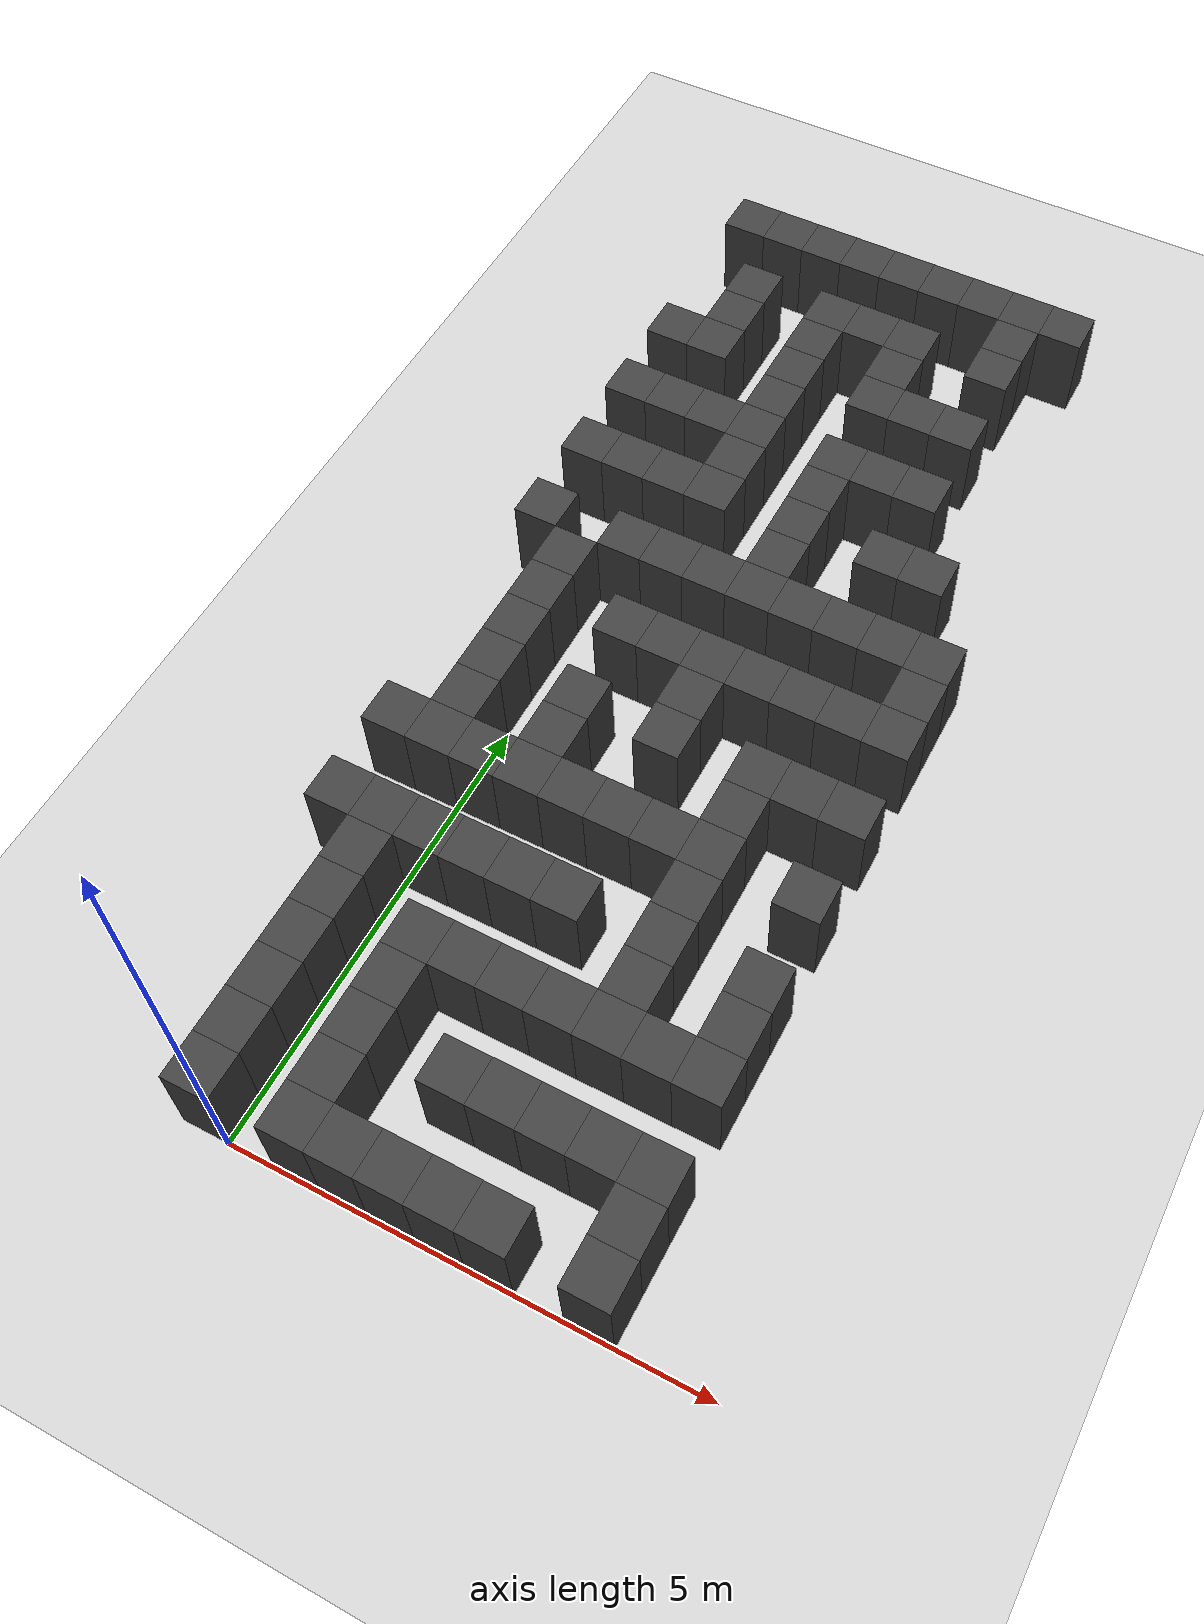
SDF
<sdf version="1.7">
 <world name="map_18914">
  <model name="ground_plane">
   <static>true</static>
   <link name="link">
    <collision name="collision">
     <geometry><plane><normal>0 0 1</normal><size>200 200</size></plane></geometry>
    </collision>
    <visual name="visual">
     <geometry><plane><normal>0 0 1</normal><size>200 200</size></plane></geometry>
     <material><ambient>0.8 0.8 0.8 1</ambient><diffuse>0.8 0.8 0.8 1</diffuse></material>
    </visual>
   </link>
  </model>
  <model name="maze_environment">
   <static>true</static>
   <link name="wall_23">
    <pose>-0.750 12.250 0.500 0 0 0</pose>
    <collision name="col"><geometry><box><size>0.5 0.5 1.0</size></box></geometry></collision>
    <visual name="vis">
     <geometry><box><size>0.5 0.5 1.0</size></box></geometry>
     <material><ambient>0.15 0.15 0.15 1</ambient><diffuse>0.25 0.25 0.25 1</diffuse></material>
    </visual>
   </link>
   <link name="wall_24">
    <pose>-0.250 12.250 0.500 0 0 0</pose>
    <collision name="col"><geometry><box><size>0.5 0.5 1.0</size></box></geometry></collision>
    <visual name="vis">
     <geometry><box><size>0.5 0.5 1.0</size></box></geometry>
     <material><ambient>0.15 0.15 0.15 1</ambient><diffuse>0.25 0.25 0.25 1</diffuse></material>
    </visual>
   </link>
   <link name="wall_25">
    <pose>0.250 12.250 0.500 0 0 0</pose>
    <collision name="col"><geometry><box><size>0.5 0.5 1.0</size></box></geometry></collision>
    <visual name="vis">
     <geometry><box><size>0.5 0.5 1.0</size></box></geometry>
     <material><ambient>0.15 0.15 0.15 1</ambient><diffuse>0.25 0.25 0.25 1</diffuse></material>
    </visual>
   </link>
   <link name="wall_26">
    <pose>0.750 12.250 0.500 0 0 0</pose>
    <collision name="col"><geometry><box><size>0.5 0.5 1.0</size></box></geometry></collision>
    <visual name="vis">
     <geometry><box><size>0.5 0.5 1.0</size></box></geometry>
     <material><ambient>0.15 0.15 0.15 1</ambient><diffuse>0.25 0.25 0.25 1</diffuse></material>
    </visual>
   </link>
   <link name="wall_27">
    <pose>1.250 12.250 0.500 0 0 0</pose>
    <collision name="col"><geometry><box><size>0.5 0.5 1.0</size></box></geometry></collision>
    <visual name="vis">
     <geometry><box><size>0.5 0.5 1.0</size></box></geometry>
     <material><ambient>0.15 0.15 0.15 1</ambient><diffuse>0.25 0.25 0.25 1</diffuse></material>
    </visual>
   </link>
   <link name="wall_28">
    <pose>1.750 12.250 0.500 0 0 0</pose>
    <collision name="col"><geometry><box><size>0.5 0.5 1.0</size></box></geometry></collision>
    <visual name="vis">
     <geometry><box><size>0.5 0.5 1.0</size></box></geometry>
     <material><ambient>0.15 0.15 0.15 1</ambient><diffuse>0.25 0.25 0.25 1</diffuse></material>
    </visual>
   </link>
   <link name="wall_29">
    <pose>2.250 12.250 0.500 0 0 0</pose>
    <collision name="col"><geometry><box><size>0.5 0.5 1.0</size></box></geometry></collision>
    <visual name="vis">
     <geometry><box><size>0.5 0.5 1.0</size></box></geometry>
     <material><ambient>0.15 0.15 0.15 1</ambient><diffuse>0.25 0.25 0.25 1</diffuse></material>
    </visual>
   </link>
   <link name="wall_30">
    <pose>2.750 12.250 0.500 0 0 0</pose>
    <collision name="col"><geometry><box><size>0.5 0.5 1.0</size></box></geometry></collision>
    <visual name="vis">
     <geometry><box><size>0.5 0.5 1.0</size></box></geometry>
     <material><ambient>0.15 0.15 0.15 1</ambient><diffuse>0.25 0.25 0.25 1</diffuse></material>
    </visual>
   </link>
   <link name="wall_31">
    <pose>3.250 12.250 0.500 0 0 0</pose>
    <collision name="col"><geometry><box><size>0.5 0.5 1.0</size></box></geometry></collision>
    <visual name="vis">
     <geometry><box><size>0.5 0.5 1.0</size></box></geometry>
     <material><ambient>0.15 0.15 0.15 1</ambient><diffuse>0.25 0.25 0.25 1</diffuse></material>
    </visual>
   </link>
   <link name="wall_53">
    <pose>2.750 11.750 0.500 0 0 0</pose>
    <collision name="col"><geometry><box><size>0.5 0.5 1.0</size></box></geometry></collision>
    <visual name="vis">
     <geometry><box><size>0.5 0.5 1.0</size></box></geometry>
     <material><ambient>0.15 0.15 0.15 1</ambient><diffuse>0.25 0.25 0.25 1</diffuse></material>
    </visual>
   </link>
   <link name="wall_76">
    <pose>-0.250 11.250 0.500 0 0 0</pose>
    <collision name="col"><geometry><box><size>0.5 0.5 1.0</size></box></geometry></collision>
    <visual name="vis">
     <geometry><box><size>0.5 0.5 1.0</size></box></geometry>
     <material><ambient>0.15 0.15 0.15 1</ambient><diffuse>0.25 0.25 0.25 1</diffuse></material>
    </visual>
   </link>
   <link name="wall_77">
    <pose>0.750 11.250 0.500 0 0 0</pose>
    <collision name="col"><geometry><box><size>0.5 0.5 1.0</size></box></geometry></collision>
    <visual name="vis">
     <geometry><box><size>0.5 0.5 1.0</size></box></geometry>
     <material><ambient>0.15 0.15 0.15 1</ambient><diffuse>0.25 0.25 0.25 1</diffuse></material>
    </visual>
   </link>
   <link name="wall_78">
    <pose>1.250 11.250 0.500 0 0 0</pose>
    <collision name="col"><geometry><box><size>0.5 0.5 1.0</size></box></geometry></collision>
    <visual name="vis">
     <geometry><box><size>0.5 0.5 1.0</size></box></geometry>
     <material><ambient>0.15 0.15 0.15 1</ambient><diffuse>0.25 0.25 0.25 1</diffuse></material>
    </visual>
   </link>
   <link name="wall_79">
    <pose>1.750 11.250 0.500 0 0 0</pose>
    <collision name="col"><geometry><box><size>0.5 0.5 1.0</size></box></geometry></collision>
    <visual name="vis">
     <geometry><box><size>0.5 0.5 1.0</size></box></geometry>
     <material><ambient>0.15 0.15 0.15 1</ambient><diffuse>0.25 0.25 0.25 1</diffuse></material>
    </visual>
   </link>
   <link name="wall_80">
    <pose>2.750 11.250 0.500 0 0 0</pose>
    <collision name="col"><geometry><box><size>0.5 0.5 1.0</size></box></geometry></collision>
    <visual name="vis">
     <geometry><box><size>0.5 0.5 1.0</size></box></geometry>
     <material><ambient>0.15 0.15 0.15 1</ambient><diffuse>0.25 0.25 0.25 1</diffuse></material>
    </visual>
   </link>
   <link name="wall_99">
    <pose>-0.250 10.750 0.500 0 0 0</pose>
    <collision name="col"><geometry><box><size>0.5 0.5 1.0</size></box></geometry></collision>
    <visual name="vis">
     <geometry><box><size>0.5 0.5 1.0</size></box></geometry>
     <material><ambient>0.15 0.15 0.15 1</ambient><diffuse>0.25 0.25 0.25 1</diffuse></material>
    </visual>
   </link>
   <link name="wall_100">
    <pose>0.750 10.750 0.500 0 0 0</pose>
    <collision name="col"><geometry><box><size>0.5 0.5 1.0</size></box></geometry></collision>
    <visual name="vis">
     <geometry><box><size>0.5 0.5 1.0</size></box></geometry>
     <material><ambient>0.15 0.15 0.15 1</ambient><diffuse>0.25 0.25 0.25 1</diffuse></material>
    </visual>
   </link>
   <link name="wall_101">
    <pose>1.750 10.750 0.500 0 0 0</pose>
    <collision name="col"><geometry><box><size>0.5 0.5 1.0</size></box></geometry></collision>
    <visual name="vis">
     <geometry><box><size>0.5 0.5 1.0</size></box></geometry>
     <material><ambient>0.15 0.15 0.15 1</ambient><diffuse>0.25 0.25 0.25 1</diffuse></material>
    </visual>
   </link>
   <link name="wall_129">
    <pose>-0.750 10.250 0.500 0 0 0</pose>
    <collision name="col"><geometry><box><size>0.5 0.5 1.0</size></box></geometry></collision>
    <visual name="vis">
     <geometry><box><size>0.5 0.5 1.0</size></box></geometry>
     <material><ambient>0.15 0.15 0.15 1</ambient><diffuse>0.25 0.25 0.25 1</diffuse></material>
    </visual>
   </link>
   <link name="wall_130">
    <pose>-0.250 10.250 0.500 0 0 0</pose>
    <collision name="col"><geometry><box><size>0.5 0.5 1.0</size></box></geometry></collision>
    <visual name="vis">
     <geometry><box><size>0.5 0.5 1.0</size></box></geometry>
     <material><ambient>0.15 0.15 0.15 1</ambient><diffuse>0.25 0.25 0.25 1</diffuse></material>
    </visual>
   </link>
   <link name="wall_131">
    <pose>0.750 10.250 0.500 0 0 0</pose>
    <collision name="col"><geometry><box><size>0.5 0.5 1.0</size></box></geometry></collision>
    <visual name="vis">
     <geometry><box><size>0.5 0.5 1.0</size></box></geometry>
     <material><ambient>0.15 0.15 0.15 1</ambient><diffuse>0.25 0.25 0.25 1</diffuse></material>
    </visual>
   </link>
   <link name="wall_132">
    <pose>1.750 10.250 0.500 0 0 0</pose>
    <collision name="col"><geometry><box><size>0.5 0.5 1.0</size></box></geometry></collision>
    <visual name="vis">
     <geometry><box><size>0.5 0.5 1.0</size></box></geometry>
     <material><ambient>0.15 0.15 0.15 1</ambient><diffuse>0.25 0.25 0.25 1</diffuse></material>
    </visual>
   </link>
   <link name="wall_133">
    <pose>2.250 10.250 0.500 0 0 0</pose>
    <collision name="col"><geometry><box><size>0.5 0.5 1.0</size></box></geometry></collision>
    <visual name="vis">
     <geometry><box><size>0.5 0.5 1.0</size></box></geometry>
     <material><ambient>0.15 0.15 0.15 1</ambient><diffuse>0.25 0.25 0.25 1</diffuse></material>
    </visual>
   </link>
   <link name="wall_134">
    <pose>2.750 10.250 0.500 0 0 0</pose>
    <collision name="col"><geometry><box><size>0.5 0.5 1.0</size></box></geometry></collision>
    <visual name="vis">
     <geometry><box><size>0.5 0.5 1.0</size></box></geometry>
     <material><ambient>0.15 0.15 0.15 1</ambient><diffuse>0.25 0.25 0.25 1</diffuse></material>
    </visual>
   </link>
   <link name="wall_152">
    <pose>0.750 9.750 0.500 0 0 0</pose>
    <collision name="col"><geometry><box><size>0.5 0.5 1.0</size></box></geometry></collision>
    <visual name="vis">
     <geometry><box><size>0.5 0.5 1.0</size></box></geometry>
     <material><ambient>0.15 0.15 0.15 1</ambient><diffuse>0.25 0.25 0.25 1</diffuse></material>
    </visual>
   </link>
   <link name="wall_177">
    <pose>-0.750 9.250 0.500 0 0 0</pose>
    <collision name="col"><geometry><box><size>0.5 0.5 1.0</size></box></geometry></collision>
    <visual name="vis">
     <geometry><box><size>0.5 0.5 1.0</size></box></geometry>
     <material><ambient>0.15 0.15 0.15 1</ambient><diffuse>0.25 0.25 0.25 1</diffuse></material>
    </visual>
   </link>
   <link name="wall_178">
    <pose>-0.250 9.250 0.500 0 0 0</pose>
    <collision name="col"><geometry><box><size>0.5 0.5 1.0</size></box></geometry></collision>
    <visual name="vis">
     <geometry><box><size>0.5 0.5 1.0</size></box></geometry>
     <material><ambient>0.15 0.15 0.15 1</ambient><diffuse>0.25 0.25 0.25 1</diffuse></material>
    </visual>
   </link>
   <link name="wall_179">
    <pose>0.250 9.250 0.500 0 0 0</pose>
    <collision name="col"><geometry><box><size>0.5 0.5 1.0</size></box></geometry></collision>
    <visual name="vis">
     <geometry><box><size>0.5 0.5 1.0</size></box></geometry>
     <material><ambient>0.15 0.15 0.15 1</ambient><diffuse>0.25 0.25 0.25 1</diffuse></material>
    </visual>
   </link>
   <link name="wall_180">
    <pose>0.750 9.250 0.500 0 0 0</pose>
    <collision name="col"><geometry><box><size>0.5 0.5 1.0</size></box></geometry></collision>
    <visual name="vis">
     <geometry><box><size>0.5 0.5 1.0</size></box></geometry>
     <material><ambient>0.15 0.15 0.15 1</ambient><diffuse>0.25 0.25 0.25 1</diffuse></material>
    </visual>
   </link>
   <link name="wall_181">
    <pose>1.750 9.250 0.500 0 0 0</pose>
    <collision name="col"><geometry><box><size>0.5 0.5 1.0</size></box></geometry></collision>
    <visual name="vis">
     <geometry><box><size>0.5 0.5 1.0</size></box></geometry>
     <material><ambient>0.15 0.15 0.15 1</ambient><diffuse>0.25 0.25 0.25 1</diffuse></material>
    </visual>
   </link>
   <link name="wall_182">
    <pose>2.250 9.250 0.500 0 0 0</pose>
    <collision name="col"><geometry><box><size>0.5 0.5 1.0</size></box></geometry></collision>
    <visual name="vis">
     <geometry><box><size>0.5 0.5 1.0</size></box></geometry>
     <material><ambient>0.15 0.15 0.15 1</ambient><diffuse>0.25 0.25 0.25 1</diffuse></material>
    </visual>
   </link>
   <link name="wall_183">
    <pose>2.750 9.250 0.500 0 0 0</pose>
    <collision name="col"><geometry><box><size>0.5 0.5 1.0</size></box></geometry></collision>
    <visual name="vis">
     <geometry><box><size>0.5 0.5 1.0</size></box></geometry>
     <material><ambient>0.15 0.15 0.15 1</ambient><diffuse>0.25 0.25 0.25 1</diffuse></material>
    </visual>
   </link>
   <link name="wall_202">
    <pose>0.750 8.750 0.500 0 0 0</pose>
    <collision name="col"><geometry><box><size>0.5 0.5 1.0</size></box></geometry></collision>
    <visual name="vis">
     <geometry><box><size>0.5 0.5 1.0</size></box></geometry>
     <material><ambient>0.15 0.15 0.15 1</ambient><diffuse>0.25 0.25 0.25 1</diffuse></material>
    </visual>
   </link>
   <link name="wall_203">
    <pose>1.750 8.750 0.500 0 0 0</pose>
    <collision name="col"><geometry><box><size>0.5 0.5 1.0</size></box></geometry></collision>
    <visual name="vis">
     <geometry><box><size>0.5 0.5 1.0</size></box></geometry>
     <material><ambient>0.15 0.15 0.15 1</ambient><diffuse>0.25 0.25 0.25 1</diffuse></material>
    </visual>
   </link>
   <link name="wall_227">
    <pose>-0.750 8.250 0.500 0 0 0</pose>
    <collision name="col"><geometry><box><size>0.5 0.5 1.0</size></box></geometry></collision>
    <visual name="vis">
     <geometry><box><size>0.5 0.5 1.0</size></box></geometry>
     <material><ambient>0.15 0.15 0.15 1</ambient><diffuse>0.25 0.25 0.25 1</diffuse></material>
    </visual>
   </link>
   <link name="wall_228">
    <pose>-0.250 8.250 0.500 0 0 0</pose>
    <collision name="col"><geometry><box><size>0.5 0.5 1.0</size></box></geometry></collision>
    <visual name="vis">
     <geometry><box><size>0.5 0.5 1.0</size></box></geometry>
     <material><ambient>0.15 0.15 0.15 1</ambient><diffuse>0.25 0.25 0.25 1</diffuse></material>
    </visual>
   </link>
   <link name="wall_229">
    <pose>0.250 8.250 0.500 0 0 0</pose>
    <collision name="col"><geometry><box><size>0.5 0.5 1.0</size></box></geometry></collision>
    <visual name="vis">
     <geometry><box><size>0.5 0.5 1.0</size></box></geometry>
     <material><ambient>0.15 0.15 0.15 1</ambient><diffuse>0.25 0.25 0.25 1</diffuse></material>
    </visual>
   </link>
   <link name="wall_230">
    <pose>0.750 8.250 0.500 0 0 0</pose>
    <collision name="col"><geometry><box><size>0.5 0.5 1.0</size></box></geometry></collision>
    <visual name="vis">
     <geometry><box><size>0.5 0.5 1.0</size></box></geometry>
     <material><ambient>0.15 0.15 0.15 1</ambient><diffuse>0.25 0.25 0.25 1</diffuse></material>
    </visual>
   </link>
   <link name="wall_231">
    <pose>1.750 8.250 0.500 0 0 0</pose>
    <collision name="col"><geometry><box><size>0.5 0.5 1.0</size></box></geometry></collision>
    <visual name="vis">
     <geometry><box><size>0.5 0.5 1.0</size></box></geometry>
     <material><ambient>0.15 0.15 0.15 1</ambient><diffuse>0.25 0.25 0.25 1</diffuse></material>
    </visual>
   </link>
   <link name="wall_232">
    <pose>2.750 8.250 0.500 0 0 0</pose>
    <collision name="col"><geometry><box><size>0.5 0.5 1.0</size></box></geometry></collision>
    <visual name="vis">
     <geometry><box><size>0.5 0.5 1.0</size></box></geometry>
     <material><ambient>0.15 0.15 0.15 1</ambient><diffuse>0.25 0.25 0.25 1</diffuse></material>
    </visual>
   </link>
   <link name="wall_233">
    <pose>3.250 8.250 0.500 0 0 0</pose>
    <collision name="col"><geometry><box><size>0.5 0.5 1.0</size></box></geometry></collision>
    <visual name="vis">
     <geometry><box><size>0.5 0.5 1.0</size></box></geometry>
     <material><ambient>0.15 0.15 0.15 1</ambient><diffuse>0.25 0.25 0.25 1</diffuse></material>
    </visual>
   </link>
   <link name="wall_255">
    <pose>1.750 7.750 0.500 0 0 0</pose>
    <collision name="col"><geometry><box><size>0.5 0.5 1.0</size></box></geometry></collision>
    <visual name="vis">
     <geometry><box><size>0.5 0.5 1.0</size></box></geometry>
     <material><ambient>0.15 0.15 0.15 1</ambient><diffuse>0.25 0.25 0.25 1</diffuse></material>
    </visual>
   </link>
   <link name="wall_277">
    <pose>-0.750 7.250 0.500 0 0 0</pose>
    <collision name="col"><geometry><box><size>0.5 0.5 1.0</size></box></geometry></collision>
    <visual name="vis">
     <geometry><box><size>0.5 0.5 1.0</size></box></geometry>
     <material><ambient>0.15 0.15 0.15 1</ambient><diffuse>0.25 0.25 0.25 1</diffuse></material>
    </visual>
   </link>
   <link name="wall_278">
    <pose>0.250 7.250 0.500 0 0 0</pose>
    <collision name="col"><geometry><box><size>0.5 0.5 1.0</size></box></geometry></collision>
    <visual name="vis">
     <geometry><box><size>0.5 0.5 1.0</size></box></geometry>
     <material><ambient>0.15 0.15 0.15 1</ambient><diffuse>0.25 0.25 0.25 1</diffuse></material>
    </visual>
   </link>
   <link name="wall_279">
    <pose>0.750 7.250 0.500 0 0 0</pose>
    <collision name="col"><geometry><box><size>0.5 0.5 1.0</size></box></geometry></collision>
    <visual name="vis">
     <geometry><box><size>0.5 0.5 1.0</size></box></geometry>
     <material><ambient>0.15 0.15 0.15 1</ambient><diffuse>0.25 0.25 0.25 1</diffuse></material>
    </visual>
   </link>
   <link name="wall_280">
    <pose>1.250 7.250 0.500 0 0 0</pose>
    <collision name="col"><geometry><box><size>0.5 0.5 1.0</size></box></geometry></collision>
    <visual name="vis">
     <geometry><box><size>0.5 0.5 1.0</size></box></geometry>
     <material><ambient>0.15 0.15 0.15 1</ambient><diffuse>0.25 0.25 0.25 1</diffuse></material>
    </visual>
   </link>
   <link name="wall_281">
    <pose>1.750 7.250 0.500 0 0 0</pose>
    <collision name="col"><geometry><box><size>0.5 0.5 1.0</size></box></geometry></collision>
    <visual name="vis">
     <geometry><box><size>0.5 0.5 1.0</size></box></geometry>
     <material><ambient>0.15 0.15 0.15 1</ambient><diffuse>0.25 0.25 0.25 1</diffuse></material>
    </visual>
   </link>
   <link name="wall_282">
    <pose>2.250 7.250 0.500 0 0 0</pose>
    <collision name="col"><geometry><box><size>0.5 0.5 1.0</size></box></geometry></collision>
    <visual name="vis">
     <geometry><box><size>0.5 0.5 1.0</size></box></geometry>
     <material><ambient>0.15 0.15 0.15 1</ambient><diffuse>0.25 0.25 0.25 1</diffuse></material>
    </visual>
   </link>
   <link name="wall_283">
    <pose>2.750 7.250 0.500 0 0 0</pose>
    <collision name="col"><geometry><box><size>0.5 0.5 1.0</size></box></geometry></collision>
    <visual name="vis">
     <geometry><box><size>0.5 0.5 1.0</size></box></geometry>
     <material><ambient>0.15 0.15 0.15 1</ambient><diffuse>0.25 0.25 0.25 1</diffuse></material>
    </visual>
   </link>
   <link name="wall_284">
    <pose>3.250 7.250 0.500 0 0 0</pose>
    <collision name="col"><geometry><box><size>0.5 0.5 1.0</size></box></geometry></collision>
    <visual name="vis">
     <geometry><box><size>0.5 0.5 1.0</size></box></geometry>
     <material><ambient>0.15 0.15 0.15 1</ambient><diffuse>0.25 0.25 0.25 1</diffuse></material>
    </visual>
   </link>
   <link name="wall_285">
    <pose>3.750 7.250 0.500 0 0 0</pose>
    <collision name="col"><geometry><box><size>0.5 0.5 1.0</size></box></geometry></collision>
    <visual name="vis">
     <geometry><box><size>0.5 0.5 1.0</size></box></geometry>
     <material><ambient>0.15 0.15 0.15 1</ambient><diffuse>0.25 0.25 0.25 1</diffuse></material>
    </visual>
   </link>
   <link name="wall_305">
    <pose>-0.250 6.750 0.500 0 0 0</pose>
    <collision name="col"><geometry><box><size>0.5 0.5 1.0</size></box></geometry></collision>
    <visual name="vis">
     <geometry><box><size>0.5 0.5 1.0</size></box></geometry>
     <material><ambient>0.15 0.15 0.15 1</ambient><diffuse>0.25 0.25 0.25 1</diffuse></material>
    </visual>
   </link>
   <link name="wall_306">
    <pose>3.750 6.750 0.500 0 0 0</pose>
    <collision name="col"><geometry><box><size>0.5 0.5 1.0</size></box></geometry></collision>
    <visual name="vis">
     <geometry><box><size>0.5 0.5 1.0</size></box></geometry>
     <material><ambient>0.15 0.15 0.15 1</ambient><diffuse>0.25 0.25 0.25 1</diffuse></material>
    </visual>
   </link>
   <link name="wall_330">
    <pose>-0.250 6.250 0.500 0 0 0</pose>
    <collision name="col"><geometry><box><size>0.5 0.5 1.0</size></box></geometry></collision>
    <visual name="vis">
     <geometry><box><size>0.5 0.5 1.0</size></box></geometry>
     <material><ambient>0.15 0.15 0.15 1</ambient><diffuse>0.25 0.25 0.25 1</diffuse></material>
    </visual>
   </link>
   <link name="wall_331">
    <pose>0.750 6.250 0.500 0 0 0</pose>
    <collision name="col"><geometry><box><size>0.5 0.5 1.0</size></box></geometry></collision>
    <visual name="vis">
     <geometry><box><size>0.5 0.5 1.0</size></box></geometry>
     <material><ambient>0.15 0.15 0.15 1</ambient><diffuse>0.25 0.25 0.25 1</diffuse></material>
    </visual>
   </link>
   <link name="wall_332">
    <pose>1.250 6.250 0.500 0 0 0</pose>
    <collision name="col"><geometry><box><size>0.5 0.5 1.0</size></box></geometry></collision>
    <visual name="vis">
     <geometry><box><size>0.5 0.5 1.0</size></box></geometry>
     <material><ambient>0.15 0.15 0.15 1</ambient><diffuse>0.25 0.25 0.25 1</diffuse></material>
    </visual>
   </link>
   <link name="wall_333">
    <pose>1.750 6.250 0.500 0 0 0</pose>
    <collision name="col"><geometry><box><size>0.5 0.5 1.0</size></box></geometry></collision>
    <visual name="vis">
     <geometry><box><size>0.5 0.5 1.0</size></box></geometry>
     <material><ambient>0.15 0.15 0.15 1</ambient><diffuse>0.25 0.25 0.25 1</diffuse></material>
    </visual>
   </link>
   <link name="wall_334">
    <pose>2.250 6.250 0.500 0 0 0</pose>
    <collision name="col"><geometry><box><size>0.5 0.5 1.0</size></box></geometry></collision>
    <visual name="vis">
     <geometry><box><size>0.5 0.5 1.0</size></box></geometry>
     <material><ambient>0.15 0.15 0.15 1</ambient><diffuse>0.25 0.25 0.25 1</diffuse></material>
    </visual>
   </link>
   <link name="wall_335">
    <pose>2.750 6.250 0.500 0 0 0</pose>
    <collision name="col"><geometry><box><size>0.5 0.5 1.0</size></box></geometry></collision>
    <visual name="vis">
     <geometry><box><size>0.5 0.5 1.0</size></box></geometry>
     <material><ambient>0.15 0.15 0.15 1</ambient><diffuse>0.25 0.25 0.25 1</diffuse></material>
    </visual>
   </link>
   <link name="wall_336">
    <pose>3.250 6.250 0.500 0 0 0</pose>
    <collision name="col"><geometry><box><size>0.5 0.5 1.0</size></box></geometry></collision>
    <visual name="vis">
     <geometry><box><size>0.5 0.5 1.0</size></box></geometry>
     <material><ambient>0.15 0.15 0.15 1</ambient><diffuse>0.25 0.25 0.25 1</diffuse></material>
    </visual>
   </link>
   <link name="wall_337">
    <pose>3.750 6.250 0.500 0 0 0</pose>
    <collision name="col"><geometry><box><size>0.5 0.5 1.0</size></box></geometry></collision>
    <visual name="vis">
     <geometry><box><size>0.5 0.5 1.0</size></box></geometry>
     <material><ambient>0.15 0.15 0.15 1</ambient><diffuse>0.25 0.25 0.25 1</diffuse></material>
    </visual>
   </link>
   <link name="wall_355">
    <pose>-0.250 5.750 0.500 0 0 0</pose>
    <collision name="col"><geometry><box><size>0.5 0.5 1.0</size></box></geometry></collision>
    <visual name="vis">
     <geometry><box><size>0.5 0.5 1.0</size></box></geometry>
     <material><ambient>0.15 0.15 0.15 1</ambient><diffuse>0.25 0.25 0.25 1</diffuse></material>
    </visual>
   </link>
   <link name="wall_356">
    <pose>1.750 5.750 0.500 0 0 0</pose>
    <collision name="col"><geometry><box><size>0.5 0.5 1.0</size></box></geometry></collision>
    <visual name="vis">
     <geometry><box><size>0.5 0.5 1.0</size></box></geometry>
     <material><ambient>0.15 0.15 0.15 1</ambient><diffuse>0.25 0.25 0.25 1</diffuse></material>
    </visual>
   </link>
   <link name="wall_380">
    <pose>-0.250 5.250 0.500 0 0 0</pose>
    <collision name="col"><geometry><box><size>0.5 0.5 1.0</size></box></geometry></collision>
    <visual name="vis">
     <geometry><box><size>0.5 0.5 1.0</size></box></geometry>
     <material><ambient>0.15 0.15 0.15 1</ambient><diffuse>0.25 0.25 0.25 1</diffuse></material>
    </visual>
   </link>
   <link name="wall_381">
    <pose>0.750 5.250 0.500 0 0 0</pose>
    <collision name="col"><geometry><box><size>0.5 0.5 1.0</size></box></geometry></collision>
    <visual name="vis">
     <geometry><box><size>0.5 0.5 1.0</size></box></geometry>
     <material><ambient>0.15 0.15 0.15 1</ambient><diffuse>0.25 0.25 0.25 1</diffuse></material>
    </visual>
   </link>
   <link name="wall_382">
    <pose>1.750 5.250 0.500 0 0 0</pose>
    <collision name="col"><geometry><box><size>0.5 0.5 1.0</size></box></geometry></collision>
    <visual name="vis">
     <geometry><box><size>0.5 0.5 1.0</size></box></geometry>
     <material><ambient>0.15 0.15 0.15 1</ambient><diffuse>0.25 0.25 0.25 1</diffuse></material>
    </visual>
   </link>
   <link name="wall_383">
    <pose>2.750 5.250 0.500 0 0 0</pose>
    <collision name="col"><geometry><box><size>0.5 0.5 1.0</size></box></geometry></collision>
    <visual name="vis">
     <geometry><box><size>0.5 0.5 1.0</size></box></geometry>
     <material><ambient>0.15 0.15 0.15 1</ambient><diffuse>0.25 0.25 0.25 1</diffuse></material>
    </visual>
   </link>
   <link name="wall_384">
    <pose>3.250 5.250 0.500 0 0 0</pose>
    <collision name="col"><geometry><box><size>0.5 0.5 1.0</size></box></geometry></collision>
    <visual name="vis">
     <geometry><box><size>0.5 0.5 1.0</size></box></geometry>
     <material><ambient>0.15 0.15 0.15 1</ambient><diffuse>0.25 0.25 0.25 1</diffuse></material>
    </visual>
   </link>
   <link name="wall_385">
    <pose>3.750 5.250 0.500 0 0 0</pose>
    <collision name="col"><geometry><box><size>0.5 0.5 1.0</size></box></geometry></collision>
    <visual name="vis">
     <geometry><box><size>0.5 0.5 1.0</size></box></geometry>
     <material><ambient>0.15 0.15 0.15 1</ambient><diffuse>0.25 0.25 0.25 1</diffuse></material>
    </visual>
   </link>
   <link name="wall_408">
    <pose>-0.250 4.750 0.500 0 0 0</pose>
    <collision name="col"><geometry><box><size>0.5 0.5 1.0</size></box></geometry></collision>
    <visual name="vis">
     <geometry><box><size>0.5 0.5 1.0</size></box></geometry>
     <material><ambient>0.15 0.15 0.15 1</ambient><diffuse>0.25 0.25 0.25 1</diffuse></material>
    </visual>
   </link>
   <link name="wall_409">
    <pose>0.750 4.750 0.500 0 0 0</pose>
    <collision name="col"><geometry><box><size>0.5 0.5 1.0</size></box></geometry></collision>
    <visual name="vis">
     <geometry><box><size>0.5 0.5 1.0</size></box></geometry>
     <material><ambient>0.15 0.15 0.15 1</ambient><diffuse>0.25 0.25 0.25 1</diffuse></material>
    </visual>
   </link>
   <link name="wall_410">
    <pose>2.750 4.750 0.500 0 0 0</pose>
    <collision name="col"><geometry><box><size>0.5 0.5 1.0</size></box></geometry></collision>
    <visual name="vis">
     <geometry><box><size>0.5 0.5 1.0</size></box></geometry>
     <material><ambient>0.15 0.15 0.15 1</ambient><diffuse>0.25 0.25 0.25 1</diffuse></material>
    </visual>
   </link>
   <link name="wall_429">
    <pose>-0.750 4.250 0.500 0 0 0</pose>
    <collision name="col"><geometry><box><size>0.5 0.5 1.0</size></box></geometry></collision>
    <visual name="vis">
     <geometry><box><size>0.5 0.5 1.0</size></box></geometry>
     <material><ambient>0.15 0.15 0.15 1</ambient><diffuse>0.25 0.25 0.25 1</diffuse></material>
    </visual>
   </link>
   <link name="wall_430">
    <pose>-0.250 4.250 0.500 0 0 0</pose>
    <collision name="col"><geometry><box><size>0.5 0.5 1.0</size></box></geometry></collision>
    <visual name="vis">
     <geometry><box><size>0.5 0.5 1.0</size></box></geometry>
     <material><ambient>0.15 0.15 0.15 1</ambient><diffuse>0.25 0.25 0.25 1</diffuse></material>
    </visual>
   </link>
   <link name="wall_431">
    <pose>0.250 4.250 0.500 0 0 0</pose>
    <collision name="col"><geometry><box><size>0.5 0.5 1.0</size></box></geometry></collision>
    <visual name="vis">
     <geometry><box><size>0.5 0.5 1.0</size></box></geometry>
     <material><ambient>0.15 0.15 0.15 1</ambient><diffuse>0.25 0.25 0.25 1</diffuse></material>
    </visual>
   </link>
   <link name="wall_432">
    <pose>0.750 4.250 0.500 0 0 0</pose>
    <collision name="col"><geometry><box><size>0.5 0.5 1.0</size></box></geometry></collision>
    <visual name="vis">
     <geometry><box><size>0.5 0.5 1.0</size></box></geometry>
     <material><ambient>0.15 0.15 0.15 1</ambient><diffuse>0.25 0.25 0.25 1</diffuse></material>
    </visual>
   </link>
   <link name="wall_433">
    <pose>1.250 4.250 0.500 0 0 0</pose>
    <collision name="col"><geometry><box><size>0.5 0.5 1.0</size></box></geometry></collision>
    <visual name="vis">
     <geometry><box><size>0.5 0.5 1.0</size></box></geometry>
     <material><ambient>0.15 0.15 0.15 1</ambient><diffuse>0.25 0.25 0.25 1</diffuse></material>
    </visual>
   </link>
   <link name="wall_434">
    <pose>1.750 4.250 0.500 0 0 0</pose>
    <collision name="col"><geometry><box><size>0.5 0.5 1.0</size></box></geometry></collision>
    <visual name="vis">
     <geometry><box><size>0.5 0.5 1.0</size></box></geometry>
     <material><ambient>0.15 0.15 0.15 1</ambient><diffuse>0.25 0.25 0.25 1</diffuse></material>
    </visual>
   </link>
   <link name="wall_435">
    <pose>2.250 4.250 0.500 0 0 0</pose>
    <collision name="col"><geometry><box><size>0.5 0.5 1.0</size></box></geometry></collision>
    <visual name="vis">
     <geometry><box><size>0.5 0.5 1.0</size></box></geometry>
     <material><ambient>0.15 0.15 0.15 1</ambient><diffuse>0.25 0.25 0.25 1</diffuse></material>
    </visual>
   </link>
   <link name="wall_436">
    <pose>2.750 4.250 0.500 0 0 0</pose>
    <collision name="col"><geometry><box><size>0.5 0.5 1.0</size></box></geometry></collision>
    <visual name="vis">
     <geometry><box><size>0.5 0.5 1.0</size></box></geometry>
     <material><ambient>0.15 0.15 0.15 1</ambient><diffuse>0.25 0.25 0.25 1</diffuse></material>
    </visual>
   </link>
   <link name="wall_437">
    <pose>3.750 4.250 0.500 0 0 0</pose>
    <collision name="col"><geometry><box><size>0.5 0.5 1.0</size></box></geometry></collision>
    <visual name="vis">
     <geometry><box><size>0.5 0.5 1.0</size></box></geometry>
     <material><ambient>0.15 0.15 0.15 1</ambient><diffuse>0.25 0.25 0.25 1</diffuse></material>
    </visual>
   </link>
   <link name="wall_457">
    <pose>2.750 3.750 0.500 0 0 0</pose>
    <collision name="col"><geometry><box><size>0.5 0.5 1.0</size></box></geometry></collision>
    <visual name="vis">
     <geometry><box><size>0.5 0.5 1.0</size></box></geometry>
     <material><ambient>0.15 0.15 0.15 1</ambient><diffuse>0.25 0.25 0.25 1</diffuse></material>
    </visual>
   </link>
   <link name="wall_485">
    <pose>-0.750 3.250 0.500 0 0 0</pose>
    <collision name="col"><geometry><box><size>0.5 0.5 1.0</size></box></geometry></collision>
    <visual name="vis">
     <geometry><box><size>0.5 0.5 1.0</size></box></geometry>
     <material><ambient>0.15 0.15 0.15 1</ambient><diffuse>0.25 0.25 0.25 1</diffuse></material>
    </visual>
   </link>
   <link name="wall_486">
    <pose>-0.250 3.250 0.500 0 0 0</pose>
    <collision name="col"><geometry><box><size>0.5 0.5 1.0</size></box></geometry></collision>
    <visual name="vis">
     <geometry><box><size>0.5 0.5 1.0</size></box></geometry>
     <material><ambient>0.15 0.15 0.15 1</ambient><diffuse>0.25 0.25 0.25 1</diffuse></material>
    </visual>
   </link>
   <link name="wall_487">
    <pose>0.250 3.250 0.500 0 0 0</pose>
    <collision name="col"><geometry><box><size>0.5 0.5 1.0</size></box></geometry></collision>
    <visual name="vis">
     <geometry><box><size>0.5 0.5 1.0</size></box></geometry>
     <material><ambient>0.15 0.15 0.15 1</ambient><diffuse>0.25 0.25 0.25 1</diffuse></material>
    </visual>
   </link>
   <link name="wall_488">
    <pose>0.750 3.250 0.500 0 0 0</pose>
    <collision name="col"><geometry><box><size>0.5 0.5 1.0</size></box></geometry></collision>
    <visual name="vis">
     <geometry><box><size>0.5 0.5 1.0</size></box></geometry>
     <material><ambient>0.15 0.15 0.15 1</ambient><diffuse>0.25 0.25 0.25 1</diffuse></material>
    </visual>
   </link>
   <link name="wall_489">
    <pose>1.250 3.250 0.500 0 0 0</pose>
    <collision name="col"><geometry><box><size>0.5 0.5 1.0</size></box></geometry></collision>
    <visual name="vis">
     <geometry><box><size>0.5 0.5 1.0</size></box></geometry>
     <material><ambient>0.15 0.15 0.15 1</ambient><diffuse>0.25 0.25 0.25 1</diffuse></material>
    </visual>
   </link>
   <link name="wall_490">
    <pose>1.750 3.250 0.500 0 0 0</pose>
    <collision name="col"><geometry><box><size>0.5 0.5 1.0</size></box></geometry></collision>
    <visual name="vis">
     <geometry><box><size>0.5 0.5 1.0</size></box></geometry>
     <material><ambient>0.15 0.15 0.15 1</ambient><diffuse>0.25 0.25 0.25 1</diffuse></material>
    </visual>
   </link>
   <link name="wall_491">
    <pose>2.750 3.250 0.500 0 0 0</pose>
    <collision name="col"><geometry><box><size>0.5 0.5 1.0</size></box></geometry></collision>
    <visual name="vis">
     <geometry><box><size>0.5 0.5 1.0</size></box></geometry>
     <material><ambient>0.15 0.15 0.15 1</ambient><diffuse>0.25 0.25 0.25 1</diffuse></material>
    </visual>
   </link>
   <link name="wall_492">
    <pose>3.750 3.250 0.500 0 0 0</pose>
    <collision name="col"><geometry><box><size>0.5 0.5 1.0</size></box></geometry></collision>
    <visual name="vis">
     <geometry><box><size>0.5 0.5 1.0</size></box></geometry>
     <material><ambient>0.15 0.15 0.15 1</ambient><diffuse>0.25 0.25 0.25 1</diffuse></material>
    </visual>
   </link>
   <link name="wall_507">
    <pose>-0.250 2.750 0.500 0 0 0</pose>
    <collision name="col"><geometry><box><size>0.5 0.5 1.0</size></box></geometry></collision>
    <visual name="vis">
     <geometry><box><size>0.5 0.5 1.0</size></box></geometry>
     <material><ambient>0.15 0.15 0.15 1</ambient><diffuse>0.25 0.25 0.25 1</diffuse></material>
    </visual>
   </link>
   <link name="wall_508">
    <pose>2.750 2.750 0.500 0 0 0</pose>
    <collision name="col"><geometry><box><size>0.5 0.5 1.0</size></box></geometry></collision>
    <visual name="vis">
     <geometry><box><size>0.5 0.5 1.0</size></box></geometry>
     <material><ambient>0.15 0.15 0.15 1</ambient><diffuse>0.25 0.25 0.25 1</diffuse></material>
    </visual>
   </link>
   <link name="wall_509">
    <pose>3.750 2.750 0.500 0 0 0</pose>
    <collision name="col"><geometry><box><size>0.5 0.5 1.0</size></box></geometry></collision>
    <visual name="vis">
     <geometry><box><size>0.5 0.5 1.0</size></box></geometry>
     <material><ambient>0.15 0.15 0.15 1</ambient><diffuse>0.25 0.25 0.25 1</diffuse></material>
    </visual>
   </link>
   <link name="wall_533">
    <pose>-0.250 2.250 0.500 0 0 0</pose>
    <collision name="col"><geometry><box><size>0.5 0.5 1.0</size></box></geometry></collision>
    <visual name="vis">
     <geometry><box><size>0.5 0.5 1.0</size></box></geometry>
     <material><ambient>0.15 0.15 0.15 1</ambient><diffuse>0.25 0.25 0.25 1</diffuse></material>
    </visual>
   </link>
   <link name="wall_534">
    <pose>0.750 2.250 0.500 0 0 0</pose>
    <collision name="col"><geometry><box><size>0.5 0.5 1.0</size></box></geometry></collision>
    <visual name="vis">
     <geometry><box><size>0.5 0.5 1.0</size></box></geometry>
     <material><ambient>0.15 0.15 0.15 1</ambient><diffuse>0.25 0.25 0.25 1</diffuse></material>
    </visual>
   </link>
   <link name="wall_535">
    <pose>1.250 2.250 0.500 0 0 0</pose>
    <collision name="col"><geometry><box><size>0.5 0.5 1.0</size></box></geometry></collision>
    <visual name="vis">
     <geometry><box><size>0.5 0.5 1.0</size></box></geometry>
     <material><ambient>0.15 0.15 0.15 1</ambient><diffuse>0.25 0.25 0.25 1</diffuse></material>
    </visual>
   </link>
   <link name="wall_536">
    <pose>1.750 2.250 0.500 0 0 0</pose>
    <collision name="col"><geometry><box><size>0.5 0.5 1.0</size></box></geometry></collision>
    <visual name="vis">
     <geometry><box><size>0.5 0.5 1.0</size></box></geometry>
     <material><ambient>0.15 0.15 0.15 1</ambient><diffuse>0.25 0.25 0.25 1</diffuse></material>
    </visual>
   </link>
   <link name="wall_537">
    <pose>2.250 2.250 0.500 0 0 0</pose>
    <collision name="col"><geometry><box><size>0.5 0.5 1.0</size></box></geometry></collision>
    <visual name="vis">
     <geometry><box><size>0.5 0.5 1.0</size></box></geometry>
     <material><ambient>0.15 0.15 0.15 1</ambient><diffuse>0.25 0.25 0.25 1</diffuse></material>
    </visual>
   </link>
   <link name="wall_538">
    <pose>2.750 2.250 0.500 0 0 0</pose>
    <collision name="col"><geometry><box><size>0.5 0.5 1.0</size></box></geometry></collision>
    <visual name="vis">
     <geometry><box><size>0.5 0.5 1.0</size></box></geometry>
     <material><ambient>0.15 0.15 0.15 1</ambient><diffuse>0.25 0.25 0.25 1</diffuse></material>
    </visual>
   </link>
   <link name="wall_539">
    <pose>3.250 2.250 0.500 0 0 0</pose>
    <collision name="col"><geometry><box><size>0.5 0.5 1.0</size></box></geometry></collision>
    <visual name="vis">
     <geometry><box><size>0.5 0.5 1.0</size></box></geometry>
     <material><ambient>0.15 0.15 0.15 1</ambient><diffuse>0.25 0.25 0.25 1</diffuse></material>
    </visual>
   </link>
   <link name="wall_540">
    <pose>3.750 2.250 0.500 0 0 0</pose>
    <collision name="col"><geometry><box><size>0.5 0.5 1.0</size></box></geometry></collision>
    <visual name="vis">
     <geometry><box><size>0.5 0.5 1.0</size></box></geometry>
     <material><ambient>0.15 0.15 0.15 1</ambient><diffuse>0.25 0.25 0.25 1</diffuse></material>
    </visual>
   </link>
   <link name="wall_558">
    <pose>-0.250 1.750 0.500 0 0 0</pose>
    <collision name="col"><geometry><box><size>0.5 0.5 1.0</size></box></geometry></collision>
    <visual name="vis">
     <geometry><box><size>0.5 0.5 1.0</size></box></geometry>
     <material><ambient>0.15 0.15 0.15 1</ambient><diffuse>0.25 0.25 0.25 1</diffuse></material>
    </visual>
   </link>
   <link name="wall_559">
    <pose>0.750 1.750 0.500 0 0 0</pose>
    <collision name="col"><geometry><box><size>0.5 0.5 1.0</size></box></geometry></collision>
    <visual name="vis">
     <geometry><box><size>0.5 0.5 1.0</size></box></geometry>
     <material><ambient>0.15 0.15 0.15 1</ambient><diffuse>0.25 0.25 0.25 1</diffuse></material>
    </visual>
   </link>
   <link name="wall_584">
    <pose>-0.250 1.250 0.500 0 0 0</pose>
    <collision name="col"><geometry><box><size>0.5 0.5 1.0</size></box></geometry></collision>
    <visual name="vis">
     <geometry><box><size>0.5 0.5 1.0</size></box></geometry>
     <material><ambient>0.15 0.15 0.15 1</ambient><diffuse>0.25 0.25 0.25 1</diffuse></material>
    </visual>
   </link>
   <link name="wall_585">
    <pose>0.750 1.250 0.500 0 0 0</pose>
    <collision name="col"><geometry><box><size>0.5 0.5 1.0</size></box></geometry></collision>
    <visual name="vis">
     <geometry><box><size>0.5 0.5 1.0</size></box></geometry>
     <material><ambient>0.15 0.15 0.15 1</ambient><diffuse>0.25 0.25 0.25 1</diffuse></material>
    </visual>
   </link>
   <link name="wall_586">
    <pose>1.750 1.250 0.500 0 0 0</pose>
    <collision name="col"><geometry><box><size>0.5 0.5 1.0</size></box></geometry></collision>
    <visual name="vis">
     <geometry><box><size>0.5 0.5 1.0</size></box></geometry>
     <material><ambient>0.15 0.15 0.15 1</ambient><diffuse>0.25 0.25 0.25 1</diffuse></material>
    </visual>
   </link>
   <link name="wall_587">
    <pose>2.250 1.250 0.500 0 0 0</pose>
    <collision name="col"><geometry><box><size>0.5 0.5 1.0</size></box></geometry></collision>
    <visual name="vis">
     <geometry><box><size>0.5 0.5 1.0</size></box></geometry>
     <material><ambient>0.15 0.15 0.15 1</ambient><diffuse>0.25 0.25 0.25 1</diffuse></material>
    </visual>
   </link>
   <link name="wall_588">
    <pose>2.750 1.250 0.500 0 0 0</pose>
    <collision name="col"><geometry><box><size>0.5 0.5 1.0</size></box></geometry></collision>
    <visual name="vis">
     <geometry><box><size>0.5 0.5 1.0</size></box></geometry>
     <material><ambient>0.15 0.15 0.15 1</ambient><diffuse>0.25 0.25 0.25 1</diffuse></material>
    </visual>
   </link>
   <link name="wall_589">
    <pose>3.250 1.250 0.500 0 0 0</pose>
    <collision name="col"><geometry><box><size>0.5 0.5 1.0</size></box></geometry></collision>
    <visual name="vis">
     <geometry><box><size>0.5 0.5 1.0</size></box></geometry>
     <material><ambient>0.15 0.15 0.15 1</ambient><diffuse>0.25 0.25 0.25 1</diffuse></material>
    </visual>
   </link>
   <link name="wall_590">
    <pose>3.750 1.250 0.500 0 0 0</pose>
    <collision name="col"><geometry><box><size>0.5 0.5 1.0</size></box></geometry></collision>
    <visual name="vis">
     <geometry><box><size>0.5 0.5 1.0</size></box></geometry>
     <material><ambient>0.15 0.15 0.15 1</ambient><diffuse>0.25 0.25 0.25 1</diffuse></material>
    </visual>
   </link>
   <link name="wall_607">
    <pose>-0.250 0.750 0.500 0 0 0</pose>
    <collision name="col"><geometry><box><size>0.5 0.5 1.0</size></box></geometry></collision>
    <visual name="vis">
     <geometry><box><size>0.5 0.5 1.0</size></box></geometry>
     <material><ambient>0.15 0.15 0.15 1</ambient><diffuse>0.25 0.25 0.25 1</diffuse></material>
    </visual>
   </link>
   <link name="wall_608">
    <pose>0.750 0.750 0.500 0 0 0</pose>
    <collision name="col"><geometry><box><size>0.5 0.5 1.0</size></box></geometry></collision>
    <visual name="vis">
     <geometry><box><size>0.5 0.5 1.0</size></box></geometry>
     <material><ambient>0.15 0.15 0.15 1</ambient><diffuse>0.25 0.25 0.25 1</diffuse></material>
    </visual>
   </link>
   <link name="wall_609">
    <pose>3.750 0.750 0.500 0 0 0</pose>
    <collision name="col"><geometry><box><size>0.5 0.5 1.0</size></box></geometry></collision>
    <visual name="vis">
     <geometry><box><size>0.5 0.5 1.0</size></box></geometry>
     <material><ambient>0.15 0.15 0.15 1</ambient><diffuse>0.25 0.25 0.25 1</diffuse></material>
    </visual>
   </link>
   <link name="wall_631">
    <pose>-0.250 0.250 0.500 0 0 0</pose>
    <collision name="col"><geometry><box><size>0.5 0.5 1.0</size></box></geometry></collision>
    <visual name="vis">
     <geometry><box><size>0.5 0.5 1.0</size></box></geometry>
     <material><ambient>0.15 0.15 0.15 1</ambient><diffuse>0.25 0.25 0.25 1</diffuse></material>
    </visual>
   </link>
   <link name="wall_632">
    <pose>0.750 0.250 0.500 0 0 0</pose>
    <collision name="col"><geometry><box><size>0.5 0.5 1.0</size></box></geometry></collision>
    <visual name="vis">
     <geometry><box><size>0.5 0.5 1.0</size></box></geometry>
     <material><ambient>0.15 0.15 0.15 1</ambient><diffuse>0.25 0.25 0.25 1</diffuse></material>
    </visual>
   </link>
   <link name="wall_633">
    <pose>1.250 0.250 0.500 0 0 0</pose>
    <collision name="col"><geometry><box><size>0.5 0.5 1.0</size></box></geometry></collision>
    <visual name="vis">
     <geometry><box><size>0.5 0.5 1.0</size></box></geometry>
     <material><ambient>0.15 0.15 0.15 1</ambient><diffuse>0.25 0.25 0.25 1</diffuse></material>
    </visual>
   </link>
   <link name="wall_634">
    <pose>1.750 0.250 0.500 0 0 0</pose>
    <collision name="col"><geometry><box><size>0.5 0.5 1.0</size></box></geometry></collision>
    <visual name="vis">
     <geometry><box><size>0.5 0.5 1.0</size></box></geometry>
     <material><ambient>0.15 0.15 0.15 1</ambient><diffuse>0.25 0.25 0.25 1</diffuse></material>
    </visual>
   </link>
   <link name="wall_635">
    <pose>2.250 0.250 0.500 0 0 0</pose>
    <collision name="col"><geometry><box><size>0.5 0.5 1.0</size></box></geometry></collision>
    <visual name="vis">
     <geometry><box><size>0.5 0.5 1.0</size></box></geometry>
     <material><ambient>0.15 0.15 0.15 1</ambient><diffuse>0.25 0.25 0.25 1</diffuse></material>
    </visual>
   </link>
   <link name="wall_636">
    <pose>2.750 0.250 0.500 0 0 0</pose>
    <collision name="col"><geometry><box><size>0.5 0.5 1.0</size></box></geometry></collision>
    <visual name="vis">
     <geometry><box><size>0.5 0.5 1.0</size></box></geometry>
     <material><ambient>0.15 0.15 0.15 1</ambient><diffuse>0.25 0.25 0.25 1</diffuse></material>
    </visual>
   </link>
   <link name="wall_637">
    <pose>3.750 0.250 0.500 0 0 0</pose>
    <collision name="col"><geometry><box><size>0.5 0.5 1.0</size></box></geometry></collision>
    <visual name="vis">
     <geometry><box><size>0.5 0.5 1.0</size></box></geometry>
     <material><ambient>0.15 0.15 0.15 1</ambient><diffuse>0.25 0.25 0.25 1</diffuse></material>
    </visual>
   </link>
  </model>
 </world>
</sdf>
